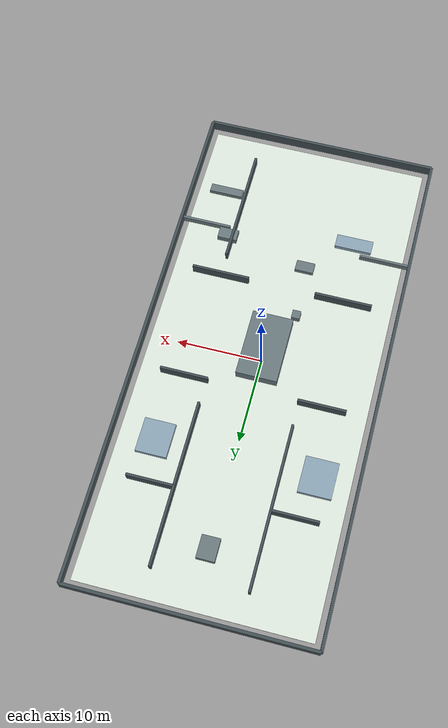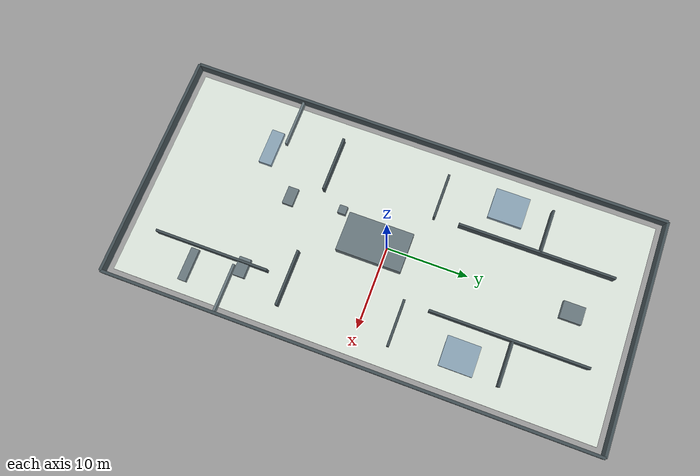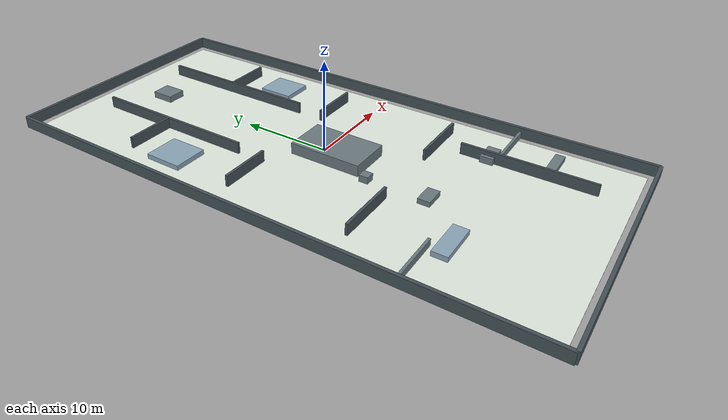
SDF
<?xml version="1.0" ?>
<sdf version="1.6">
  <world name="courtyard_house">
    <gravity>0 0 -9.8</gravity>
    <scene>
      <ambient>0.65 0.65 0.65 1</ambient>
      <background>0.78 0.84 0.88 1</background>
    </scene>
    <include>
      <uri>model://sun</uri>
    </include>
    <model name="courtyard_house_floor">
      <static>true</static>
      <pose>0.000 0.000 -0.025 0 0 0</pose>
      <link name="floor_link">
        <collision name="floor_collision">
          <geometry>
            <box><size>26.400 58.400 0.050</size></box>
          </geometry>
        </collision>
        <visual name="floor_visual">
          <geometry>
            <box><size>26.400 58.400 0.050</size></box>
          </geometry>
          <material><ambient>0.88 0.92 0.88 1</ambient><diffuse>0.88 0.92 0.88 1</diffuse></material>
        </visual>
      </link>
    </model>
    <model name="outer_north">
      <static>true</static>
      <pose>0.000 30.000 0.625 0 0 0</pose>
      <link name="outer_north_link">
        <collision name="outer_north_collision">
          <geometry>
            <box><size>28.000 0.350 1.250</size></box>
          </geometry>
        </collision>
        <visual name="outer_north_visual">
          <geometry>
            <box><size>28.000 0.350 1.250</size></box>
          </geometry>
          <material><ambient>0.27 0.32 0.34 1</ambient><diffuse>0.27 0.32 0.34 1</diffuse></material>
        </visual>
      </link>
    </model>
    <model name="outer_south">
      <static>true</static>
      <pose>0.000 -30.000 0.625 0 0 0</pose>
      <link name="outer_south_link">
        <collision name="outer_south_collision">
          <geometry>
            <box><size>28.000 0.350 1.250</size></box>
          </geometry>
        </collision>
        <visual name="outer_south_visual">
          <geometry>
            <box><size>28.000 0.350 1.250</size></box>
          </geometry>
          <material><ambient>0.27 0.32 0.34 1</ambient><diffuse>0.27 0.32 0.34 1</diffuse></material>
        </visual>
      </link>
    </model>
    <model name="outer_west">
      <static>true</static>
      <pose>-14.000 0.000 0.625 0 0 0</pose>
      <link name="outer_west_link">
        <collision name="outer_west_collision">
          <geometry>
            <box><size>0.350 60.000 1.250</size></box>
          </geometry>
        </collision>
        <visual name="outer_west_visual">
          <geometry>
            <box><size>0.350 60.000 1.250</size></box>
          </geometry>
          <material><ambient>0.27 0.32 0.34 1</ambient><diffuse>0.27 0.32 0.34 1</diffuse></material>
        </visual>
      </link>
    </model>
    <model name="outer_east">
      <static>true</static>
      <pose>14.000 0.000 0.625 0 0 0</pose>
      <link name="outer_east_link">
        <collision name="outer_east_collision">
          <geometry>
            <box><size>0.350 60.000 1.250</size></box>
          </geometry>
        </collision>
        <visual name="outer_east_visual">
          <geometry>
            <box><size>0.350 60.000 1.250</size></box>
          </geometry>
          <material><ambient>0.27 0.32 0.34 1</ambient><diffuse>0.27 0.32 0.34 1</diffuse></material>
        </visual>
      </link>
    </model>
    <model name="home_public_private_wall_w">
      <static>true</static>
      <pose>-8.000 4.000 0.625 0 0 0</pose>
      <link name="home_public_private_wall_w_link">
        <collision name="home_public_private_wall_w_collision">
          <geometry>
            <box><size>5.600 0.280 1.250</size></box>
          </geometry>
        </collision>
        <visual name="home_public_private_wall_w_visual">
          <geometry>
            <box><size>5.600 0.280 1.250</size></box>
          </geometry>
          <material><ambient>0.27 0.32 0.34 1</ambient><diffuse>0.27 0.32 0.34 1</diffuse></material>
        </visual>
      </link>
    </model>
    <model name="home_public_private_wall_e">
      <static>true</static>
      <pose>8.000 4.000 0.625 0 0 0</pose>
      <link name="home_public_private_wall_e_link">
        <collision name="home_public_private_wall_e_collision">
          <geometry>
            <box><size>5.600 0.280 1.250</size></box>
          </geometry>
        </collision>
        <visual name="home_public_private_wall_e_visual">
          <geometry>
            <box><size>5.600 0.280 1.250</size></box>
          </geometry>
          <material><ambient>0.27 0.32 0.34 1</ambient><diffuse>0.27 0.32 0.34 1</diffuse></material>
        </visual>
      </link>
    </model>
    <model name="home_left_private_wall">
      <static>true</static>
      <pose>-5.400 16.500 0.625 0 0 0</pose>
      <link name="home_left_private_wall_link">
        <collision name="home_left_private_wall_collision">
          <geometry>
            <box><size>0.280 19.000 1.250</size></box>
          </geometry>
        </collision>
        <visual name="home_left_private_wall_visual">
          <geometry>
            <box><size>0.280 19.000 1.250</size></box>
          </geometry>
          <material><ambient>0.27 0.32 0.34 1</ambient><diffuse>0.27 0.32 0.34 1</diffuse></material>
        </visual>
      </link>
    </model>
    <model name="home_right_private_wall">
      <static>true</static>
      <pose>5.400 16.500 0.625 0 0 0</pose>
      <link name="home_right_private_wall_link">
        <collision name="home_right_private_wall_collision">
          <geometry>
            <box><size>0.280 19.000 1.250</size></box>
          </geometry>
        </collision>
        <visual name="home_right_private_wall_visual">
          <geometry>
            <box><size>0.280 19.000 1.250</size></box>
          </geometry>
          <material><ambient>0.27 0.32 0.34 1</ambient><diffuse>0.27 0.32 0.34 1</diffuse></material>
        </visual>
      </link>
    </model>
    <model name="home_kitchen_side_wall">
      <static>true</static>
      <pose>7.400 -19.000 0.625 0 0 0</pose>
      <link name="home_kitchen_side_wall_link">
        <collision name="home_kitchen_side_wall_collision">
          <geometry>
            <box><size>0.280 14.000 1.250</size></box>
          </geometry>
        </collision>
        <visual name="home_kitchen_side_wall_visual">
          <geometry>
            <box><size>0.280 14.000 1.250</size></box>
          </geometry>
          <material><ambient>0.27 0.32 0.34 1</ambient><diffuse>0.27 0.32 0.34 1</diffuse></material>
        </visual>
      </link>
    </model>
    <model name="home_kitchen_dining_wall_w">
      <static>true</static>
      <pose>-7.400 -9.500 0.625 0 0 0</pose>
      <link name="home_kitchen_dining_wall_w_link">
        <collision name="home_kitchen_dining_wall_w_collision">
          <geometry>
            <box><size>6.800 0.280 1.250</size></box>
          </geometry>
        </collision>
        <visual name="home_kitchen_dining_wall_w_visual">
          <geometry>
            <box><size>6.800 0.280 1.250</size></box>
          </geometry>
          <material><ambient>0.27 0.32 0.34 1</ambient><diffuse>0.27 0.32 0.34 1</diffuse></material>
        </visual>
      </link>
    </model>
    <model name="home_kitchen_dining_wall_e">
      <static>true</static>
      <pose>7.400 -9.500 0.625 0 0 0</pose>
      <link name="home_kitchen_dining_wall_e_link">
        <collision name="home_kitchen_dining_wall_e_collision">
          <geometry>
            <box><size>6.800 0.280 1.250</size></box>
          </geometry>
        </collision>
        <visual name="home_kitchen_dining_wall_e_visual">
          <geometry>
            <box><size>6.800 0.280 1.250</size></box>
          </geometry>
          <material><ambient>0.27 0.32 0.34 1</ambient><diffuse>0.27 0.32 0.34 1</diffuse></material>
        </visual>
      </link>
    </model>
    <model name="home_bath_wall_w">
      <static>true</static>
      <pose>-8.100 17.000 0.625 0 0 0</pose>
      <link name="home_bath_wall_w_link">
        <collision name="home_bath_wall_w_collision">
          <geometry>
            <box><size>5.400 0.280 1.250</size></box>
          </geometry>
        </collision>
        <visual name="home_bath_wall_w_visual">
          <geometry>
            <box><size>5.400 0.280 1.250</size></box>
          </geometry>
          <material><ambient>0.27 0.32 0.34 1</ambient><diffuse>0.27 0.32 0.34 1</diffuse></material>
        </visual>
      </link>
    </model>
    <model name="home_bath_wall_e">
      <static>true</static>
      <pose>8.100 17.000 0.625 0 0 0</pose>
      <link name="home_bath_wall_e_link">
        <collision name="home_bath_wall_e_collision">
          <geometry>
            <box><size>5.400 0.280 1.250</size></box>
          </geometry>
        </collision>
        <visual name="home_bath_wall_e_visual">
          <geometry>
            <box><size>5.400 0.280 1.250</size></box>
          </geometry>
          <material><ambient>0.27 0.32 0.34 1</ambient><diffuse>0.27 0.32 0.34 1</diffuse></material>
        </visual>
      </link>
    </model>
    <model name="courtyard_low_planter_core">
      <static>true</static>
      <pose>0.000 -1.500 0.625 0 0 0</pose>
      <link name="courtyard_low_planter_core_link">
        <collision name="courtyard_low_planter_core_collision">
          <geometry>
            <box><size>4.800 8.000 1.250</size></box>
          </geometry>
        </collision>
        <visual name="courtyard_low_planter_core_visual">
          <geometry>
            <box><size>4.800 8.000 1.250</size></box>
          </geometry>
          <material><ambient>0.42 0.48 0.50 1</ambient><diffuse>0.42 0.48 0.50 1</diffuse></material>
        </visual>
      </link>
    </model>
    <model name="courtyard_sofa">
      <static>true</static>
      <pose>-7.000 -17.500 0.275 0 0 0</pose>
      <link name="courtyard_sofa_link">
        <collision name="courtyard_sofa_collision">
          <geometry>
            <box><size>4.400 1.600 0.550</size></box>
          </geometry>
        </collision>
        <visual name="courtyard_sofa_visual">
          <geometry>
            <box><size>4.400 1.600 0.550</size></box>
          </geometry>
          <material><ambient>0.55 0.65 0.72 1</ambient><diffuse>0.55 0.65 0.72 1</diffuse></material>
        </visual>
      </link>
    </model>
    <model name="courtyard_coffee_table">
      <static>true</static>
      <pose>-2.000 -13.000 0.275 0 0 0</pose>
      <link name="courtyard_coffee_table_link">
        <collision name="courtyard_coffee_table_collision">
          <geometry>
            <box><size>2.200 1.300 0.550</size></box>
          </geometry>
        </collision>
        <visual name="courtyard_coffee_table_visual">
          <geometry>
            <box><size>2.200 1.300 0.550</size></box>
          </geometry>
          <material><ambient>0.42 0.48 0.50 1</ambient><diffuse>0.42 0.48 0.50 1</diffuse></material>
        </visual>
      </link>
    </model>
    <model name="courtyard_dining_table">
      <static>true</static>
      <pose>0.000 -3.000 0.275 0 0 0</pose>
      <link name="courtyard_dining_table_link">
        <collision name="courtyard_dining_table_collision">
          <geometry>
            <box><size>2.800 1.600 0.550</size></box>
          </geometry>
        </collision>
        <visual name="courtyard_dining_table_visual">
          <geometry>
            <box><size>2.800 1.600 0.550</size></box>
          </geometry>
          <material><ambient>0.42 0.48 0.50 1</ambient><diffuse>0.42 0.48 0.50 1</diffuse></material>
        </visual>
      </link>
    </model>
    <model name="courtyard_kitchen_counter">
      <static>true</static>
      <pose>9.800 -21.000 0.275 0 0 0</pose>
      <link name="courtyard_kitchen_counter_link">
        <collision name="courtyard_kitchen_counter_collision">
          <geometry>
            <box><size>4.000 1.000 0.550</size></box>
          </geometry>
        </collision>
        <visual name="courtyard_kitchen_counter_visual">
          <geometry>
            <box><size>4.000 1.000 0.550</size></box>
          </geometry>
          <material><ambient>0.42 0.48 0.50 1</ambient><diffuse>0.42 0.48 0.50 1</diffuse></material>
        </visual>
      </link>
    </model>
    <model name="courtyard_kitchen_island">
      <static>true</static>
      <pose>8.000 -15.000 0.375 0 0 0</pose>
      <link name="courtyard_kitchen_island_link">
        <collision name="courtyard_kitchen_island_collision">
          <geometry>
            <box><size>2.300 1.400 0.750</size></box>
          </geometry>
        </collision>
        <visual name="courtyard_kitchen_island_visual">
          <geometry>
            <box><size>2.300 1.400 0.750</size></box>
          </geometry>
          <material><ambient>0.42 0.48 0.50 1</ambient><diffuse>0.42 0.48 0.50 1</diffuse></material>
        </visual>
      </link>
    </model>
    <model name="courtyard_bed_left">
      <static>true</static>
      <pose>-9.500 12.000 0.275 0 0 0</pose>
      <link name="courtyard_bed_left_link">
        <collision name="courtyard_bed_left_collision">
          <geometry>
            <box><size>3.800 4.200 0.550</size></box>
          </geometry>
        </collision>
        <visual name="courtyard_bed_left_visual">
          <geometry>
            <box><size>3.800 4.200 0.550</size></box>
          </geometry>
          <material><ambient>0.55 0.65 0.72 1</ambient><diffuse>0.55 0.65 0.72 1</diffuse></material>
        </visual>
      </link>
    </model>
    <model name="courtyard_bed_right">
      <static>true</static>
      <pose>9.000 12.000 0.275 0 0 0</pose>
      <link name="courtyard_bed_right_link">
        <collision name="courtyard_bed_right_collision">
          <geometry>
            <box><size>3.600 4.000 0.550</size></box>
          </geometry>
        </collision>
        <visual name="courtyard_bed_right_visual">
          <geometry>
            <box><size>3.600 4.000 0.550</size></box>
          </geometry>
          <material><ambient>0.55 0.65 0.72 1</ambient><diffuse>0.55 0.65 0.72 1</diffuse></material>
        </visual>
      </link>
    </model>
    <model name="courtyard_bath_fixture">
      <static>true</static>
      <pose>0.000 22.500 0.375 0 0 0</pose>
      <link name="courtyard_bath_fixture_link">
        <collision name="courtyard_bath_fixture_collision">
          <geometry>
            <box><size>2.100 2.600 0.750</size></box>
          </geometry>
        </collision>
        <visual name="courtyard_bath_fixture_visual">
          <geometry>
            <box><size>2.100 2.600 0.750</size></box>
          </geometry>
          <material><ambient>0.42 0.48 0.50 1</ambient><diffuse>0.42 0.48 0.50 1</diffuse></material>
        </visual>
      </link>
    </model>
    <model name="courtyard_fragile_object">
      <static>true</static>
      <pose>-2.500 -6.500 0.375 0 0 0</pose>
      <link name="courtyard_fragile_object_link">
        <collision name="courtyard_fragile_object_collision">
          <geometry>
            <box><size>1.000 1.000 0.750</size></box>
          </geometry>
        </collision>
        <visual name="courtyard_fragile_object_visual">
          <geometry>
            <box><size>1.000 1.000 0.750</size></box>
          </geometry>
          <material><ambient>0.42 0.48 0.50 1</ambient><diffuse>0.42 0.48 0.50 1</diffuse></material>
        </visual>
      </link>
    </model>
    <model name="courtyard_west_room_screen">
      <static>true</static>
      <pose>-11.000 -16.000 0.375 0 0 0</pose>
      <link name="courtyard_west_room_screen_link">
        <collision name="courtyard_west_room_screen_collision">
          <geometry>
            <box><size>6.000 0.280 0.750</size></box>
          </geometry>
        </collision>
        <visual name="courtyard_west_room_screen_visual">
          <geometry>
            <box><size>6.000 0.280 0.750</size></box>
          </geometry>
          <material><ambient>0.42 0.48 0.50 1</ambient><diffuse>0.42 0.48 0.50 1</diffuse></material>
        </visual>
      </link>
    </model>
    <model name="courtyard_east_room_screen">
      <static>true</static>
      <pose>11.000 -16.000 0.375 0 0 0</pose>
      <link name="courtyard_east_room_screen_link">
        <collision name="courtyard_east_room_screen_collision">
          <geometry>
            <box><size>6.000 0.280 0.750</size></box>
          </geometry>
        </collision>
        <visual name="courtyard_east_room_screen_visual">
          <geometry>
            <box><size>6.000 0.280 0.750</size></box>
          </geometry>
          <material><ambient>0.42 0.48 0.50 1</ambient><diffuse>0.42 0.48 0.50 1</diffuse></material>
        </visual>
      </link>
    </model>
  </world>
</sdf>
